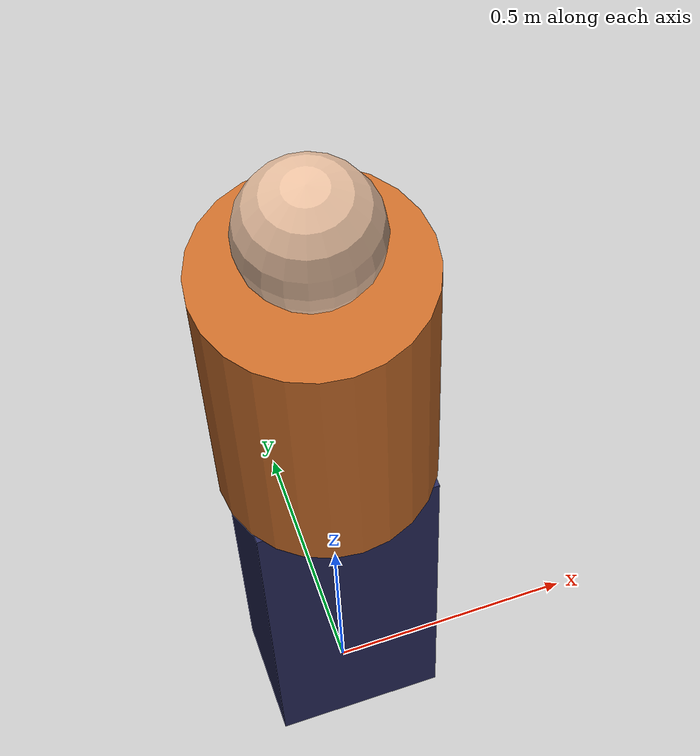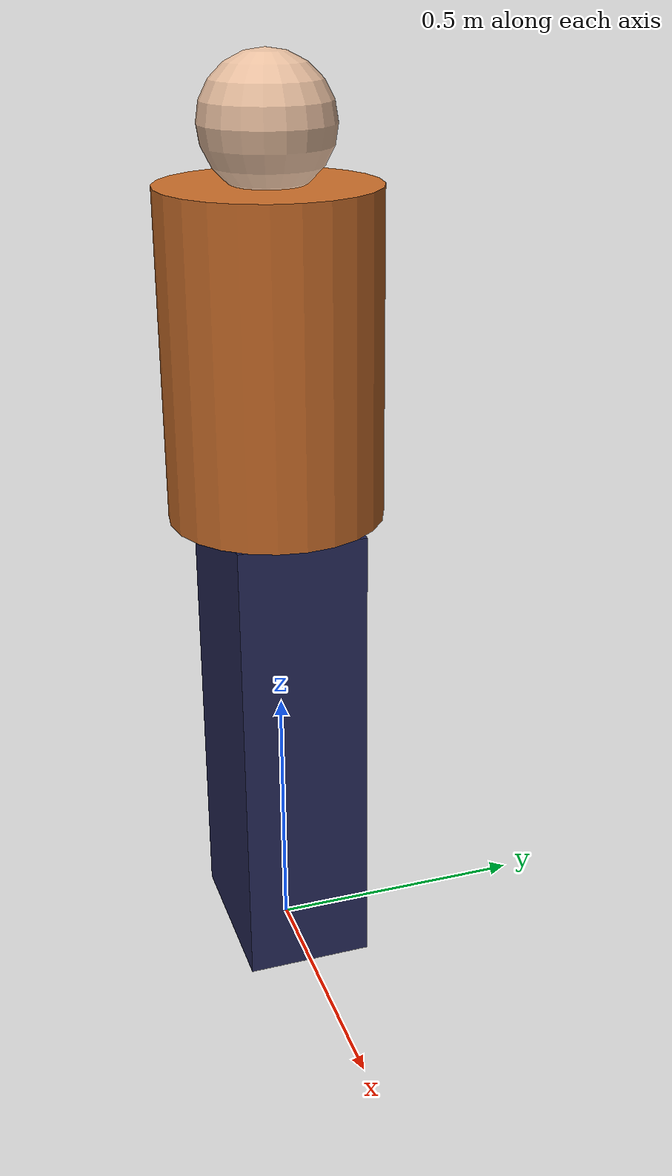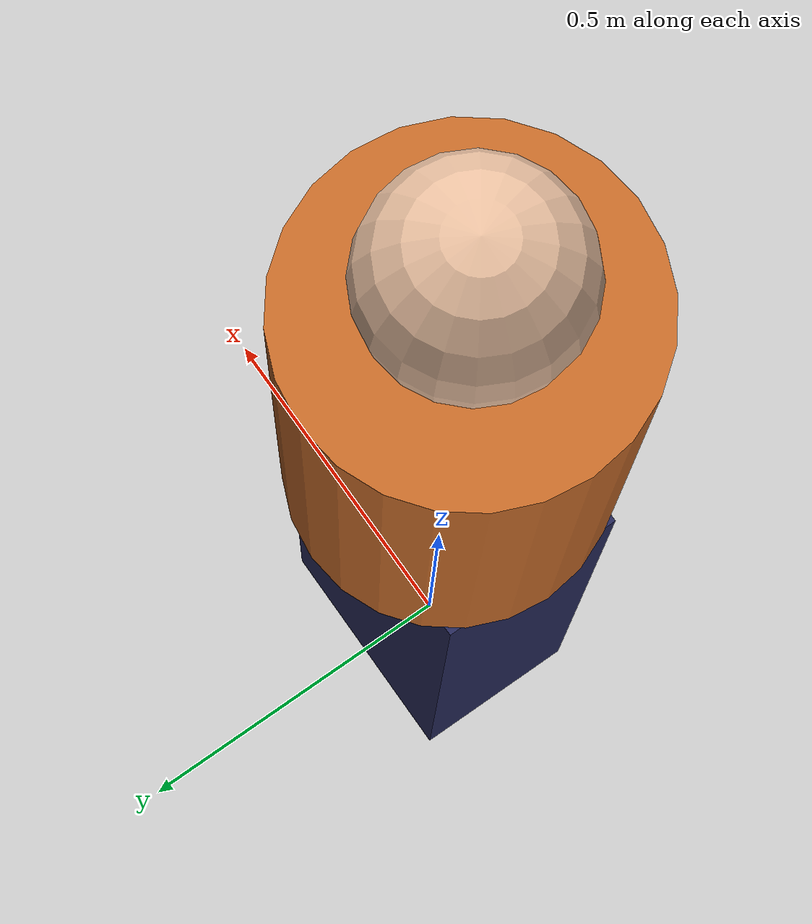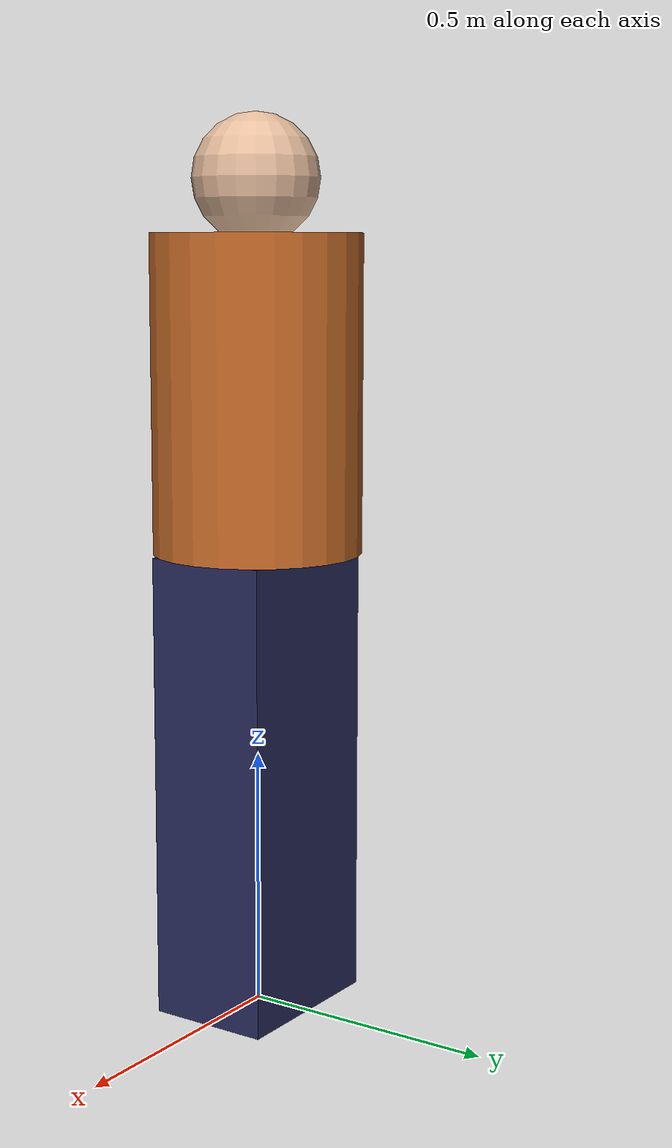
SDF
<?xml version="1.0" ?>

<sdf version="1.8">
  <model name="person_human">
    <static>true</static>
    <link name="link">
      <!-- ONE collision box, person footprint, centred 0.85 m up. This is the
           sole reason /scan returns a near hit - keep it whole and unbroken. -->
      <collision name="collision">
        <pose>0 0 0.85 0 0 0</pose>
        <geometry>
          <box>
            <size>0.6 0.5 1.7</size>
          </box>
        </geometry>
      </collision>

      <!-- Legs: a box from the floor to the hips (~0.0 .. 0.9 m). -->
      <visual name="legs">
        <pose>0 0 0.45 0 0 0</pose>
        <geometry>
          <box>
            <size>0.34 0.24 0.9</size>
          </box>
        </geometry>
        <material>
          <ambient>0.12 0.13 0.28 1</ambient>
          <diffuse>0.15 0.16 0.35 1</diffuse>
          <specular>0.05 0.05 0.08 1</specular>
        </material>
      </visual>

      <!-- Torso: a cylinder from the hips to the shoulders (~0.9 .. 1.5 m). -->
      <visual name="torso">
        <pose>0 0 1.2 0 0 0</pose>
        <geometry>
          <cylinder>
            <radius>0.2</radius>
            <length>0.6</length>
          </cylinder>
        </geometry>
        <material>
          <ambient>0.55 0.30 0.12 1</ambient>
          <diffuse>0.78 0.42 0.16 1</diffuse>
          <specular>0.10 0.06 0.03 1</specular>
        </material>
      </visual>

      <!-- Head: a sphere on top of the torso (~1.5 .. 1.7 m). -->
      <visual name="head">
        <pose>0 0 1.6 0 0 0</pose>
        <geometry>
          <sphere>
            <radius>0.12</radius>
          </sphere>
        </geometry>
        <material>
          <ambient>0.70 0.56 0.45 1</ambient>
          <diffuse>0.90 0.74 0.62 1</diffuse>
          <specular>0.12 0.10 0.08 1</specular>
        </material>
      </visual>
    </link>
  </model>
</sdf>
